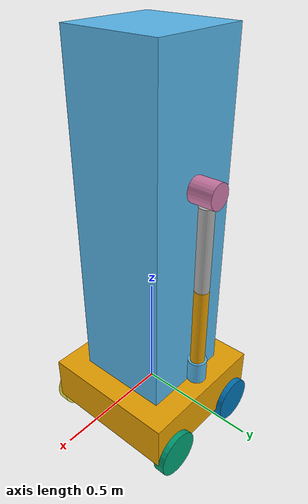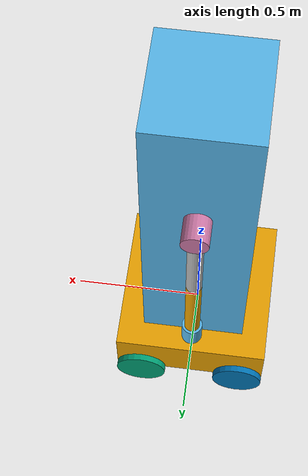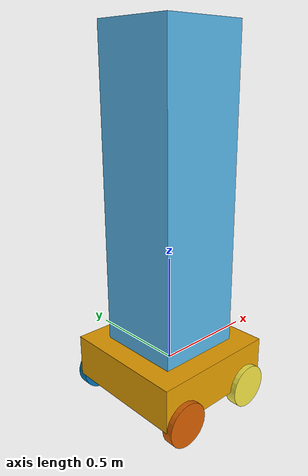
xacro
<?xml version='1.0'?>
<robot name="my_mobile_robot" xmlns:xacro="http://www.ros.org/wiki/xacro">
  <xacro:include filename="$(find custom_robot_sim)/urdf/common_macros.xacro" />
  <xacro:include filename="$(find custom_robot_sim)/urdf/mobile_manipulator.gazebo.xacro" />

  <!--stor kroppen som basen-->
  <link name="base_link">
    <visual name="base_visual">
      <origin xyz="0 0 0" rpy="0 0 0"/>
      <geometry>
        <box size="0.6 0.6 0.2"/>
      </geometry>
    </visual>
    <collision name="base_collision">
      <origin xyz="0 0 0" rpy="0 0 0"/>
      <geometry>
        <box size="0 0 0"/>
      </geometry>
    </collision>
    <xacro:inertial_box length="0.6" width="0.6" height="0.2" density="1">
      <origin xyz="0 0 0" rpy="0 0 0"/>
    </xacro:inertial_box>
  </link>

  <!--smalere kroppen oppå basen-->
  <link name="body_link">
    <visual name="body_visual">
      <origin xyz="0 0 0" rpy="0 0 0"/> <!--må fin justeres-->
      <geometry>
        <box size="0.4 0.4 1.4"/>
      </geometry>
    </visual>
    <collision name="body_collision">
      <origin xyz="0 0 0" rpy="0 0 0"/>
      <geometry>
        <box size="0.4 0.4 1.4"/>
      </geometry>
    </collision>
    <xacro:inertial_box length="0.4" width="0.4" height="1.4" density="1">
	    <origin xyz="0 0 0" rpy="0 0 0"/>
	  </xacro:inertial_box>
  </link>

  <!-- Ledd som kobler kroppen til basen -->
  <joint name="body_to_base_joint" type="fixed">
    <parent link="base_link"/>
    <child link="body_link"/>
    <origin xyz="0 0 0.8" rpy="0 0 0"/>
  </joint>

  <!--==========HJULENE==========-->

  <!-- Venstre forhjul -->
  <joint type="continuous" name="left_front_wheel_joint">
    <origin xyz="0.2 0.3 -0.1" rpy="0 0 0"/>
    <child link="left_front_wheel"/>
    <parent link="base_link"/>
    <axis xyz="0 1 0"/>
    <limit effort="100" velocity="100"/>
  </joint>

  <link name="left_front_wheel">
    <visual name="left_front_wheel_visual">
      <origin xyz="0 0 0" rpy="0 1.5707 1.5707"/>
      <geometry>
        <cylinder radius="0.1" length="0.05"/>
      </geometry>
    </visual>
    <collision name="left_front_wheel_collision">
      <origin xyz="0 0 0" rpy="0 1.5707 1.5707"/>
      <geometry>
        <cylinder radius="0.1" length="0.05"/>
      </geometry>
    </collision>
	  <xacro:inertial_cylinder radius="0.1" length="0.05" density="1">
	    <origin xyz="0 0 0" rpy="0 0 0"/>
	  </xacro:inertial_cylinder>
  </link>

  <!-- Høyre forhjul -->
  <joint type="continuous" name="right_front_wheel_joint">
    <origin xyz="0.2 -0.3 -0.1" rpy="0 0 0"/>
    <child link="right_front_wheel"/>
    <parent link="base_link"/>
    <axis xyz="0 1 0"/>
    <limit effort="100" velocity="100"/>
  </joint>

  <link name="right_front_wheel">
    <visual name="right_front_wheel_visual">
      <origin xyz="0 0 0" rpy="0 1.5707 1.5707"/>
      <geometry>
        <cylinder radius="0.1" length="0.05"/>
      </geometry>
    </visual>
    <collision name="right_front_wheel_collision">
      <origin xyz="0 0 0" rpy="0 1.5707 1.5707"/>
      <geometry>
        <cylinder radius="0.1" length="0.05"/>
      </geometry>
    </collision>
    <xacro:inertial_cylinder radius="0.1" length="0.05" density="1">
	    <origin xyz="0 0 0" rpy="0 0 0"/>
	  </xacro:inertial_cylinder>
  </link>

  <!-- Bakre venstre hjul -->
  <joint type="continuous" name="left_back_wheel_joint">
    <origin xyz="-0.2 0.3 -0.1" rpy="0 0 0"/>
    <child link="left_back_wheel"/>
    <parent link="base_link"/>
    <axis xyz="0 1 0"/>
    <limit effort="100" velocity="100"/>
  </joint>

  <link name="left_back_wheel">
    <visual name="left_back_wheel_visual">
      <origin xyz="0 0 0" rpy="0 1.5707 1.5707"/>
      <geometry>
        <cylinder radius="0.1" length="0.05"/>
      </geometry>
    </visual>
    <collision name="left_back_wheel_collision">
      <origin xyz="0 0 0" rpy="0 1.5707 1.5707"/>
      <geometry>
        <cylinder radius="0.1" length="0.05"/>
      </geometry>
    </collision>
    <xacro:inertial_cylinder radius="0.1" length="0.05" density="1">
	    <origin xyz="0 0 0" rpy="0 0 0"/>
	  </xacro:inertial_cylinder>
  </link>

  <!-- Bakre høyre hjul -->
  <joint type="continuous" name="right_back_wheel_joint">
    <origin xyz="-0.2 -0.3 -0.1" rpy="0 0 0"/>
    <child link="right_back_wheel"/>
    <parent link="base_link"/>
    <axis xyz="0 1 0"/>
    <limit effort="100" velocity="100"/>
  </joint>

  <link name="right_back_wheel">
    <visual name="right_back_wheel_visual">
      <origin xyz="0 0 0" rpy="0 1.5707 1.5707"/>
      <geometry>
        <cylinder radius="0.1" length="0.05"/>
      </geometry>
    </visual>
    <collision name="right_back_wheel_collision">
      <origin xyz="0 0 0" rpy="0 1.5707 1.5707"/>
      <geometry>
        <cylinder radius="0.1" length="0.05"/>
      </geometry>
    </collision>
    <xacro:inertial_cylinder radius="0.1" length="0.05" density="1">
	    <origin xyz="0 0 0" rpy="0 0 0"/>
	  </xacro:inertial_cylinder>
  </link>

<!--==========ARMEN==========-->

<!-- Arm base  -->
<joint name="base_to_arm_joint" type="revolute">
  <parent link="body_link"/>
  <child link="arm_base"/>
  <origin xyz="0.0 0.25 0.2" rpy="0 0 0"/>
  <axis xyz="0 1 0"/>
  <limit lower="-3.1415" upper="3.1415" effort="10" velocity="1.0"/>
</joint>

<link name="arm_base">
  <visual>
    <origin xyz="0 0 0" rpy="1.5708 0 0"/>
    <geometry>
      <cylinder radius="0.05" length="0.1"/>
    </geometry>
  </visual>
  <collision name="base_to_arm_collision">
    <origin xyz="0 0 0" rpy="1.5708 0 0"/>
    <geometry>
      <cylinder radius="0" length="0"/>
    </geometry>
  </collision>
  <xacro:inertial_cylinder radius="0.5" length="0.1" density="1">
	  <origin xyz="0 0 0" rpy="1.5708 0 0"/>
  </xacro:inertial_cylinder>
</link>

<!-- shoulder -->

<!-- joint 1 -->
<joint name="joint_1" type="revolute">
  <parent link="arm_base"/>
  <child link="link_1"/>
  <origin xyz="0 0 -0.225" rpy="0 0 0"/> <!--juster-->
  <axis xyz="0 0 1"/>
  <limit lower="-3.1415" upper="3.1415" effort="10" velocity="1.0"/>
</joint>

<link name="link_1">
  <visual>
    <origin xyz="0 0 0" rpy="0 0 0"/>
    <geometry>
      <cylinder radius="0.03" length="0.35"/>
    </geometry>
  </visual>
  <collision name="ledd_1_collision">
    <origin xyz="0 0 0" rpy="0 0 0"/>
    <geometry>
      <cylinder radius="0.03" length="0.3"/>
    </geometry>
  </collision>
  <xacro:inertial_cylinder radius="0.03" length="0.35" density="1">
	  <origin xyz="0 0 0" rpy="0 0 0"/>
  </xacro:inertial_cylinder>
</link>

<!-- upper_arm -->

<!-- joint 2 -->
<joint name="joint_2" type="revolute">
  <parent link="link_1"/>
  <child link="link_2"/>
  <origin xyz="0 0 -0.35" rpy="0 0 0"/>
  <axis xyz="0 1 0"/>
  <limit lower="-3.1415" upper="3.1415" effort="10" velocity="1.0"/>
</joint>

<link name="link_2">
  <visual>
    <origin xyz="0 0 0" rpy="0 0 0"/>
    <geometry>
      <cylinder radius="0.03" length="0.35"/>
    </geometry>
  </visual>
  <collision name="ledd_2_collision">
    <origin xyz="0 0 0" rpy="0 0 0"/>
    <geometry>
      <cylinder radius="0.03" length="0.3"/>
    </geometry>
  </collision>
  <xacro:inertial_cylinder radius="0.03" length="0.35" density="1">
	  <origin xyz="0 0 0" rpy="0 0 0"/>
  </xacro:inertial_cylinder>
</link>

<!-- lower_arm -->
<!-- joint 3 -->
<joint name="joint_3" type="revolute">
  <parent link="link_2"/>
  <child link="link_3"/>
  <origin xyz="0 0 -0.225" rpy="0 0 0"/>
  <axis xyz="0 1 0"/>
  <limit lower="-3.1415" upper="3.1415" effort="10" velocity="1.0"/>
</joint>

<link name="link_3">
  <visual>
    <origin xyz="0 0 0" rpy="0 0 0"/>
    <geometry>
      <cylinder radius="0.04" length="0.1"/>
    </geometry>
  </visual>
  <collision name="ledd_3_collision">
    <origin xyz="0 0 0" rpy="0 0 0"/>
    <geometry>
      <cylinder radius="0.04" length="0.05"/>
    </geometry>
  </collision>
  <xacro:inertial_cylinder radius="0.04" length="0.1" density="1">
	  <origin xyz="0 0 0" rpy="0 0 0"/>
  </xacro:inertial_cylinder>
</link>

<!-- End Effector -->
</robot>
